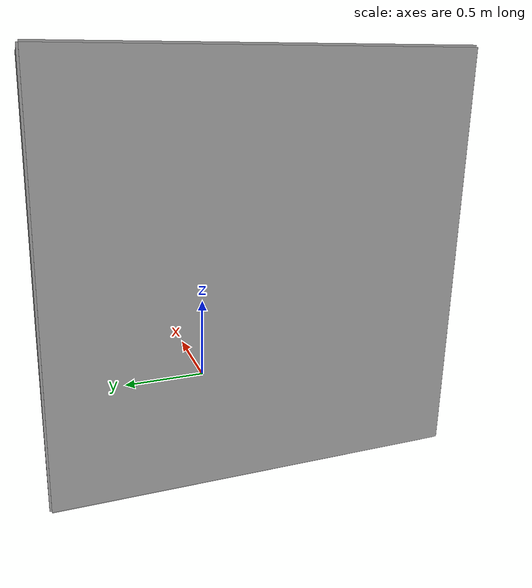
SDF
<?xml version='1.0' encoding='us-ascii'?>
<sdf version='1.6'>
  <world name='default'>
    <light name='spot_light' type='spot'>
      <cast_shadows>0</cast_shadows>
      <!-- define diffuse and specular color = white -->
      <specular>255 255 255 255</specular>
      <diffuse>255 255 255 255</diffuse>
      <pose>0 0 0 0 0 0</pose>
      <spot>
        <inner_angle>0.5</inner_angle>
        <outer_angle>1.5</outer_angle>
        <falloff>0.9</falloff>
      </spot>
      <attenuation>
        <range>10</range>
        <constant>0.3</constant>
        <linear>0.02</linear>
        <quadratic>0.001</quadratic>
      </attenuation>
      <direction>0 0 -1</direction>
    </light>
    <gravity>0 0 -9.8</gravity>
    <magnetic_field>6e-06 2.3e-05 -4.2e-05</magnetic_field>
    <atmosphere type='adiabatic'/>
    <physics name='default_physics' default='0' type='ode'>
      <max_step_size>0.001</max_step_size>
      <real_time_factor>1</real_time_factor>
      <real_time_update_rate>1000</real_time_update_rate>
    </physics>
    <scene>
      <ambient>0.4 0.4 0.4 1</ambient>
      <background>0.7 0.7 0.7 1</background>
      <shadows>0</shadows>
    </scene>
    <spherical_coordinates>
      <surface_model>EARTH_WGS84</surface_model>
      <latitude_deg>0</latitude_deg>
      <longitude_deg>0</longitude_deg>
      <elevation>0</elevation>
      <heading_deg>0</heading_deg>
    </spherical_coordinates>
    <gui fullscreen='0'>
      <camera name='user_camera'>
        <pose frame=''>0 0 0.5 0 -0.23 1.57</pose>
        <view_controller>orbit</view_controller>
        <projection_type>perspective</projection_type>
      </camera>
    </gui>
    <model name="wall_front">
      <static>1</static>
      <pose>0 1 1 0.0 0 0.0</pose>
      <link name="link">
        <collision name="collision">
          <geometry>
            <box>
              <size>2 0.02 2</size>
            </box>
          </geometry>
        </collision>
        <visual name="visual">
          <material>
            <script>
              <name>Gazebo/Grey</name>
              <uri>file://media/materials/scripts/gazebo.material</uri>
            </script>
          </material>
          <geometry>
            <box>
              <size>2 0.02 2</size>
            </box>
          </geometry>
        </visual>
      </link>
    </model>
    <model name="wall_back">
      <static>1</static>
      <pose>0 -1 1 0.0 0 0.0</pose>
      <link name="link">
        <collision name="collision">
          <geometry>
            <box>
              <size>2 0.02 2</size>
            </box>
          </geometry>
        </collision>
        <visual name="visual">
          <material>
            <script>
              <name>Gazebo/Grey</name>
              <uri>file://media/materials/scripts/gazebo.material</uri>
            </script>
          </material>
          <geometry>
            <box>
              <size>2 0.02 2</size>
            </box>
          </geometry>
        </visual>
      </link>
    </model>
    <model name="wall_right">
      <static>1</static>
      <pose>1 0 1 0 0 1.57</pose>
      <link name="link">
        <collision name="collision">
          <geometry>
            <box>
              <size>2 0.02 2</size>
            </box>
          </geometry>
        </collision>
        <visual name="visual">
          <material>
            <script>
              <name>Gazebo/Grey</name>
              <uri>file://media/materials/scripts/gazebo.material</uri>
            </script>
          </material>
          <geometry>
            <box>
              <size>2 0.02 2</size>
            </box>
          </geometry>
        </visual>
      </link>
    </model>
    <model name="wall_left">
      <static>1</static>
      <pose>-1 0 1 0 0 1.57</pose>
      <link name="link">
        <collision name="collision">
          <geometry>
            <box>
              <size>2 0.02 2</size>
            </box>
          </geometry>
        </collision>
        <visual name="visual">
          <material>
            <script>
              <name>Gazebo/Grey</name>
              <uri>file://media/materials/scripts/gazebo.material</uri>
            </script>
          </material>
          <geometry>
            <box>
              <size>2 0.02 2</size>
            </box>
          </geometry>
        </visual>
      </link>
    </model>
    <model name="wall_top">
      <static>1</static>
      <pose>0 0 2 1.57 0 0</pose>
      <link name="link">
        <collision name="collision">
          <geometry>
            <box>
              <size>2 0.02 2</size>
            </box>
          </geometry>
        </collision>
        <visual name="visual">
          <material>
            <script>
              <name>Gazebo/Grey</name>
              <uri>file://media/materials/scripts/gazebo.material</uri>
            </script>
          </material>
          <geometry>
            <box>
              <size>2 0.02 2</size>
            </box>
          </geometry>
        </visual>
      </link>
    </model>
    <model name="wall_bottom">
      <static>1</static>
      <pose>0 0 0 1.57 0 0</pose>
      <link name="link">
        <collision name="collision">
          <geometry>
            <box>
              <size>2 0.02 2</size>
            </box>
          </geometry>
        </collision>
        <visual name="visual">
          <material>
            <script>
              <name>Gazebo/Grey</name>
              <uri>file://media/materials/scripts/gazebo.material</uri>
            </script>
          </material>
          <geometry>
            <box>
              <size>2 0.02 2</size>
            </box>
          </geometry>
        </visual>
      </link>
    </model>
  </world>
</sdf>
